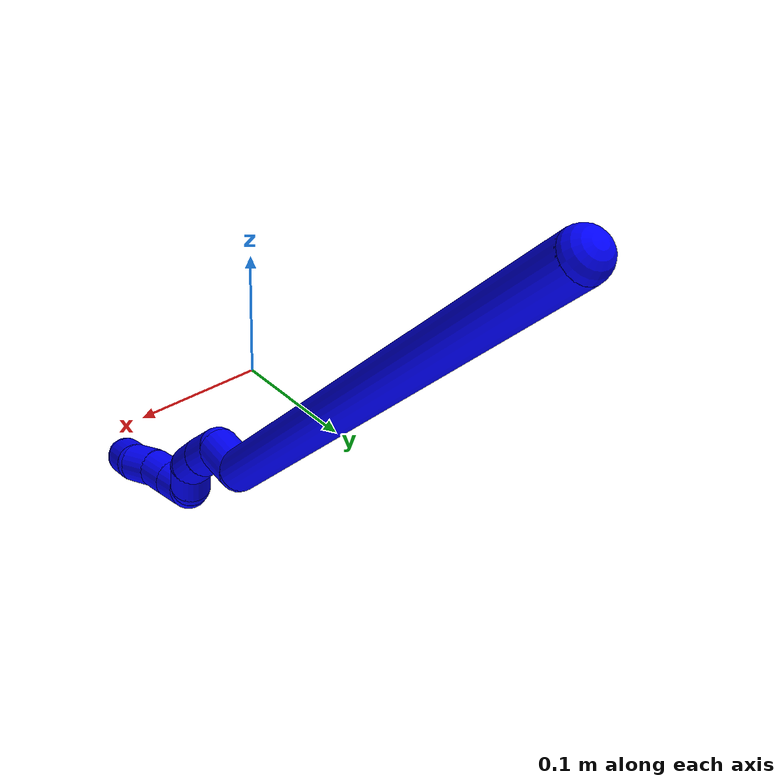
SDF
<sdf version="1.7">
 <world name="default">
  <plugin name="TubeGeneratorPlugin" filename="libtube_generator_plugin.so"/>
  <model name="photoneo_s_sensor">
   <static>1</static>
   <pose>0 0 2 1.57079 1.57079 3.14159</pose>
   <link name="link">
    <inertial><mass>0.1</mass></inertial>
    <sensor name="sensor" type="depth">
     <update_rate>30</update_rate>
     <camera>
      <horizontal_fov>1.22</horizontal_fov>
      <image><width>1920</width><height>1200</height><format>B8G8R8</format></image>
      <clip><near>0.1</near><far>4</far></clip>
      <depth_camera><output>points</output></depth_camera>
     </camera>
     <plugin name="camera_plugin" filename="libgazebo_ros_depth_camera.so">
      <baseline>0.2</baseline>
      <alwaysOn>1</alwaysOn>
      <updateRate>0.0</updateRate>
      <cameraName>camera_ir</cameraName>
      <imageTopicName>/camera/color/image_raw</imageTopicName>
      <cameraInfoTopicName>/camera/color/camera_info</cameraInfoTopicName>
      <depthImageTopicName>/camera/depth/image_raw</depthImageTopicName>
      <depthImageCameraInfoTopicName>/camera/depth/camera_info</depthImageCameraInfoTopicName>
      <pointCloudTopicName>/camera/depth/points</pointCloudTopicName>
      <frameName>fr_optical</frameName>
      <pointCloudCutoff>0.1</pointCloudCutoff>
      <pointCloudCutoffMax>2.0</pointCloudCutoffMax>
      <distortionK1>0</distortionK1>
      <distortionK2>0</distortionK2>
      <distortionK3>0</distortionK3>
      <distortionT1>0</distortionT1>
      <distortionT2>0</distortionT2>
      <CxPrime>0</CxPrime>
      <Cx>0</Cx>
      <Cy>0</Cy>
      <focalLength>0</focalLength>
      <hackBaseline>0</hackBaseline>
     </plugin>
    </sensor>
   </link>
  </model>
  <gravity>0 0 -9.8</gravity>
  <magnetic_field>6e-06 2.3e-05 -4.2e-05</magnetic_field>
  <atmosphere type="adiabatic"/>
  <physics name="default_physics" default="0" type="ode">
   <max_step_size>0.003</max_step_size>
   <real_time_factor>1</real_time_factor>
   <real_time_update_rate>1000</real_time_update_rate>
   <max_contacts>10000</max_contacts>
   <ode>
    <solver>
     <type>quick</type>
     <iters>100</iters>
     <sor>1.3</sor>
     <use_dynamic_moi_rescaling>0</use_dynamic_moi_rescaling>
    </solver>
    <constraints>
     <contact_max_correcting_vel>0</contact_max_correcting_vel>
     <contact_surface_layer>0.001</contact_surface_layer>
     <cfm>0</cfm>
     <erp>0.2</erp>
    </constraints>
   </ode>
  </physics>
  <scene><ambient>0.4 0.4 0.4 1</ambient><background>0.7 0.7 0.7 1</background><shadows>0</shadows></scene>
  <audio><device>default</device></audio>
  <spherical_coordinates>
   <surface_model>EARTH_WGS84</surface_model>
   <latitude_deg>0</latitude_deg>
   <longitude_deg>0</longitude_deg>
   <elevation>0</elevation>
   <heading_deg>0</heading_deg>
  </spherical_coordinates>
  <model name="bin">
   <static>1</static>
   <link name="bottom">
    <collision name="collision-bottom">
     <pose>0 0 -0.01 0 -0 0</pose>
     <geometry><box><size>0.8 0.6 0.02</size></box></geometry>
     <surface>
      <friction><ode><mu>100</mu><mu2>100</mu2></ode></friction>
      <contact><collide_bitmask>65535</collide_bitmask></contact>
     </surface>
    </collision>
   </link>
   <link name="west_wall">
    <collision name="collision-west_wall">
     <pose>-0.41 0 0.1 0 -0 0</pose>
     <geometry><box><size>0.02 0.6 0.2</size></box></geometry>
     <surface>
      <friction><ode><mu>100</mu><mu2>100</mu2></ode></friction>
      <contact><collide_bitmask>65535</collide_bitmask></contact>
     </surface>
    </collision>
   </link>
   <link name="east_wall">
    <collision name="collision-east_wall">
     <pose>0.41 0 0.1 0 -0 0</pose>
     <geometry><box><size>0.02 0.6 0.2</size></box></geometry>
     <surface>
      <friction><ode><mu>100</mu><mu2>100</mu2></ode></friction>
      <contact><collide_bitmask>65535</collide_bitmask></contact>
     </surface>
    </collision>
   </link>
   <link name="south_wall">
    <collision name="collision-south_wall">
     <pose>0 -0.31 0.1 0 -0 0</pose>
     <geometry><box><size>0.8 0.02 0.2</size></box></geometry>
     <surface>
      <friction><ode><mu>100</mu><mu2>100</mu2></ode></friction>
      <contact><collide_bitmask>65535</collide_bitmask></contact>
     </surface>
    </collision>
   </link>
   <link name="north_wall">
    <collision name="collision-north_wall">
     <pose>0 0.31 0.1 0 -0 0</pose>
     <geometry><box><size>0.8 0.02 0.2</size></box></geometry>
     <surface>
      <friction><ode><mu>100</mu><mu2>100</mu2></ode></friction>
      <contact><collide_bitmask>65535</collide_bitmask></contact>
     </surface>
    </collision>
   </link>
  </model>
  <model name="1">
   <static>0</static>
   <link name="1">
    <collision name="collision-cylinder-e_1_1_4">
     <pose>0.007059 -0.011814 -0.154752 3.0654 0.045449 1.07542</pose>
     <geometry><cylinder><radius>0.0125</radius><length>0.310725</length></cylinder></geometry>
     <surface>
      <friction><ode><mu>1.16</mu><mu2>1.16</mu2><slip1>0</slip1><slip2>0</slip2></ode></friction>
      <contact><ode><kp>1e+06</kp><kd>1</kd><max_vel>0</max_vel><min_depth>0.001</min_depth></ode></contact>
     </surface>
    </collision>
    <visual name="visual-cylinder-e_1_1_4">
     <pose>0.007059 -0.011814 -0.154752 3.0654 0.045449 1.07542</pose>
     <geometry><cylinder><radius>0.0125</radius><length>0.310725</length></cylinder></geometry>
     <material><ambient>0 0 1 1</ambient></material>
    </visual>
    <collision name="collision-cylinder-e_2_4_5">
     <pose>0.011742 -0.03346 -0.319087 2.34336 -0.171273 -0.401608</pose>
     <geometry><cylinder><radius>0.0125</radius><length>0.027868</length></cylinder></geometry>
     <surface>
      <friction><ode><mu>1.16</mu><mu2>1.16</mu2><slip1>0</slip1><slip2>0</slip2></ode></friction>
      <contact><ode><kp>1e+06</kp><kd>1</kd><max_vel>0</max_vel><min_depth>0.001</min_depth></ode></contact>
     </surface>
    </collision>
    <visual name="visual-cylinder-e_2_4_5">
     <pose>0.011742 -0.03346 -0.319087 2.34336 -0.171273 -0.401608</pose>
     <geometry><cylinder><radius>0.0125</radius><length>0.027868</length></cylinder></geometry>
     <material><ambient>0 0 1 1</ambient></material>
    </visual>
    <collision name="collision-cylinder-e_3_5_6">
     <pose>0.010068 -0.044544 -0.339262 3.02399 0.065597 1.01689</pose>
     <geometry><cylinder><radius>0.0125</radius><length>0.021376</length></cylinder></geometry>
     <surface>
      <friction><ode><mu>1.16</mu><mu2>1.16</mu2><slip1>0</slip1><slip2>0</slip2></ode></friction>
      <contact><ode><kp>1e+06</kp><kd>1</kd><max_vel>0</max_vel><min_depth>0.001</min_depth></ode></contact>
     </surface>
    </collision>
    <visual name="visual-cylinder-e_3_5_6">
     <pose>0.010068 -0.044544 -0.339262 3.02399 0.065597 1.01689</pose>
     <geometry><cylinder><radius>0.0125</radius><length>0.021376</length></cylinder></geometry>
     <material><ambient>0 0 1 1</ambient></material>
    </visual>
    <collision name="collision-cylinder-e_4_6_7">
     <pose>0.011484 -0.046391 -0.359824 3.08191 0.071475 1.75032</pose>
     <geometry><cylinder><radius>0.0125</radius><length>0.02003</length></cylinder></geometry>
     <surface>
      <friction><ode><mu>1.16</mu><mu2>1.16</mu2><slip1>0</slip1><slip2>0</slip2></ode></friction>
      <contact><ode><kp>1e+06</kp><kd>1</kd><max_vel>0</max_vel><min_depth>0.001</min_depth></ode></contact>
     </surface>
    </collision>
    <visual name="visual-cylinder-e_4_6_7">
     <pose>0.011484 -0.046391 -0.359824 3.08191 0.071475 1.75032</pose>
     <geometry><cylinder><radius>0.0125</radius><length>0.02003</length></cylinder></geometry>
     <material><ambient>0 0 1 1</ambient></material>
    </visual>
    <collision name="collision-cylinder-e_5_7_8">
     <pose>0.011371 -0.042516 -0.378703 -2.67637 -0.082935 0.346768</pose>
     <geometry><cylinder><radius>0.0125</radius><length>0.020001</length></cylinder></geometry>
     <surface>
      <friction><ode><mu>1.16</mu><mu2>1.16</mu2><slip1>0</slip1><slip2>0</slip2></ode></friction>
      <contact><ode><kp>1e+06</kp><kd>1</kd><max_vel>0</max_vel><min_depth>0.001</min_depth></ode></contact>
     </surface>
    </collision>
    <visual name="visual-cylinder-e_5_7_8">
     <pose>0.011371 -0.042516 -0.378703 -2.67637 -0.082935 0.346768</pose>
     <geometry><cylinder><radius>0.0125</radius><length>0.020001</length></cylinder></geometry>
     <material><ambient>0 0 1 1</ambient></material>
    </visual>
    <collision name="collision-cylinder-e_6_8_9">
     <pose>0.00742 -0.038645 -0.397091 3.07841 -0.317575 -2.75193</pose>
     <geometry><cylinder><radius>0.0125</radius><length>0.020001</length></cylinder></geometry>
     <surface>
      <friction><ode><mu>1.16</mu><mu2>1.16</mu2><slip1>0</slip1><slip2>0</slip2></ode></friction>
      <contact><ode><kp>1e+06</kp><kd>1</kd><max_vel>0</max_vel><min_depth>0.001</min_depth></ode></contact>
     </surface>
    </collision>
    <visual name="visual-cylinder-e_6_8_9">
     <pose>0.00742 -0.038645 -0.397091 3.07841 -0.317575 -2.75193</pose>
     <geometry><cylinder><radius>0.0125</radius><length>0.020001</length></cylinder></geometry>
     <material><ambient>0 0 1 1</ambient></material>
    </visual>
    <collision name="collision-cylinder-e_7_9_10">
     <pose>0.004379 -0.045759 -0.414158 2.43206 0.008219 0.022186</pose>
     <geometry><cylinder><radius>0.0125</radius><length>0.02</length></cylinder></geometry>
     <surface>
      <friction><ode><mu>1.16</mu><mu2>1.16</mu2><slip1>0</slip1><slip2>0</slip2></ode></friction>
      <contact><ode><kp>1e+06</kp><kd>1</kd><max_vel>0</max_vel><min_depth>0.001</min_depth></ode></contact>
     </surface>
    </collision>
    <visual name="visual-cylinder-e_7_9_10">
     <pose>0.004379 -0.045759 -0.414158 2.43206 0.008219 0.022186</pose>
     <geometry><cylinder><radius>0.0125</radius><length>0.02</length></cylinder></geometry>
     <material><ambient>0 0 1 1</ambient></material>
    </visual>
    <collision name="collision-cylinder-e_8_10_11">
     <pose>0.004665 -0.059038 -0.429107 2.39848 0.020369 0.052266</pose>
     <geometry><cylinder><radius>0.0125</radius><length>0.02</length></cylinder></geometry>
     <surface>
      <friction><ode><mu>1.16</mu><mu2>1.16</mu2><slip1>0</slip1><slip2>0</slip2></ode></friction>
      <contact><ode><kp>1e+06</kp><kd>1</kd><max_vel>0</max_vel><min_depth>0.001</min_depth></ode></contact>
     </surface>
    </collision>
    <visual name="visual-cylinder-e_8_10_11">
     <pose>0.004665 -0.059038 -0.429107 2.39848 0.020369 0.052266</pose>
     <geometry><cylinder><radius>0.0125</radius><length>0.02</length></cylinder></geometry>
     <material><ambient>0 0 1 1</ambient></material>
    </visual>
    <collision name="collision-cylinder-e_9_11_12">
     <pose>0.00723 -0.071672 -0.444214 2.49307 0.238336 0.68441</pose>
     <geometry><cylinder><radius>0.0125</radius><length>0.02</length></cylinder></geometry>
     <surface>
      <friction><ode><mu>1.16</mu><mu2>1.16</mu2><slip1>0</slip1><slip2>0</slip2></ode></friction>
      <contact><ode><kp>1e+06</kp><kd>1</kd><max_vel>0</max_vel><min_depth>0.001</min_depth></ode></contact>
     </surface>
    </collision>
    <visual name="visual-cylinder-e_9_11_12">
     <pose>0.00723 -0.071672 -0.444214 2.49307 0.238336 0.68441</pose>
     <geometry><cylinder><radius>0.0125</radius><length>0.02</length></cylinder></geometry>
     <material><ambient>0 0 1 1</ambient></material>
    </visual>
    <collision name="collision-cylinder-e_10_12_2">
     <pose>0.00779 -0.082352 -0.460538 2.6306 -0.181075 -0.669001</pose>
     <geometry><cylinder><radius>0.0125</radius><length>0.02</length></cylinder></geometry>
     <surface>
      <friction><ode><mu>1.16</mu><mu2>1.16</mu2><slip1>0</slip1><slip2>0</slip2></ode></friction>
      <contact><ode><kp>1e+06</kp><kd>1</kd><max_vel>0</max_vel><min_depth>0.001</min_depth></ode></contact>
     </surface>
    </collision>
    <visual name="visual-cylinder-e_10_12_2">
     <pose>0.00779 -0.082352 -0.460538 2.6306 -0.181075 -0.669001</pose>
     <geometry><cylinder><radius>0.0125</radius><length>0.02</length></cylinder></geometry>
     <material><ambient>0 0 1 1</ambient></material>
    </visual>
    <collision name="collision-sphere-2">
     <pose>0.005989 -0.087162 -0.469118 0 -0 0</pose>
     <geometry><sphere><radius>0.0125</radius></sphere></geometry>
     <surface>
      <friction><ode><mu>1.16</mu><mu2>1.16</mu2><slip1>0</slip1><slip2>0</slip2></ode></friction>
      <contact><ode><kp>1e+06</kp><kd>1</kd><max_vel>0</max_vel><min_depth>0.001</min_depth></ode></contact>
     </surface>
    </collision>
    <visual name="visual-sphere-2">
     <pose>0.005989 -0.087162 -0.469118 0 -0 0</pose>
     <geometry><sphere><radius>0.0125</radius></sphere></geometry>
     <material><ambient>0 0 1 1</ambient></material>
    </visual>
    <collision name="collision-sphere-12">
     <pose>0.00959 -0.077541 -0.451958 0 -0 0</pose>
     <geometry><sphere><radius>0.0125</radius></sphere></geometry>
     <surface>
      <friction><ode><mu>1.16</mu><mu2>1.16</mu2><slip1>0</slip1><slip2>0</slip2></ode></friction>
      <contact><ode><kp>1e+06</kp><kd>1</kd><max_vel>0</max_vel><min_depth>0.001</min_depth></ode></contact>
     </surface>
    </collision>
    <visual name="visual-sphere-12">
     <pose>0.00959 -0.077541 -0.451958 0 -0 0</pose>
     <geometry><sphere><radius>0.0125</radius></sphere></geometry>
     <material><ambient>0 0 1 1</ambient></material>
    </visual>
    <collision name="collision-sphere-11">
     <pose>0.004869 -0.065803 -0.436469 0 -0 0</pose>
     <geometry><sphere><radius>0.0125</radius></sphere></geometry>
     <surface>
      <friction><ode><mu>1.16</mu><mu2>1.16</mu2><slip1>0</slip1><slip2>0</slip2></ode></friction>
      <contact><ode><kp>1e+06</kp><kd>1</kd><max_vel>0</max_vel><min_depth>0.001</min_depth></ode></contact>
     </surface>
    </collision>
    <visual name="visual-sphere-11">
     <pose>0.004869 -0.065803 -0.436469 0 -0 0</pose>
     <geometry><sphere><radius>0.0125</radius></sphere></geometry>
     <material><ambient>0 0 1 1</ambient></material>
    </visual>
    <collision name="collision-sphere-10">
     <pose>0.004461 -0.052274 -0.421745 0 -0 0</pose>
     <geometry><sphere><radius>0.0125</radius></sphere></geometry>
     <surface>
      <friction><ode><mu>1.16</mu><mu2>1.16</mu2><slip1>0</slip1><slip2>0</slip2></ode></friction>
      <contact><ode><kp>1e+06</kp><kd>1</kd><max_vel>0</max_vel><min_depth>0.001</min_depth></ode></contact>
     </surface>
    </collision>
    <visual name="visual-sphere-10">
     <pose>0.004461 -0.052274 -0.421745 0 -0 0</pose>
     <geometry><sphere><radius>0.0125</radius></sphere></geometry>
     <material><ambient>0 0 1 1</ambient></material>
    </visual>
    <collision name="collision-sphere-9">
     <pose>0.004297 -0.039244 -0.406572 0 -0 0</pose>
     <geometry><sphere><radius>0.0125</radius></sphere></geometry>
     <surface>
      <friction><ode><mu>1.16</mu><mu2>1.16</mu2><slip1>0</slip1><slip2>0</slip2></ode></friction>
      <contact><ode><kp>1e+06</kp><kd>1</kd><max_vel>0</max_vel><min_depth>0.001</min_depth></ode></contact>
     </surface>
    </collision>
    <visual name="visual-sphere-9">
     <pose>0.004297 -0.039244 -0.406572 0 -0 0</pose>
     <geometry><sphere><radius>0.0125</radius></sphere></geometry>
     <material><ambient>0 0 1 1</ambient></material>
    </visual>
    <collision name="collision-sphere-4">
     <pose>0.014117 -0.023627 -0.309504 0 -0 0</pose>
     <geometry><sphere><radius>0.0125</radius></sphere></geometry>
     <surface>
      <friction><ode><mu>1.16</mu><mu2>1.16</mu2><slip1>0</slip1><slip2>0</slip2></ode></friction>
      <contact><ode><kp>1e+06</kp><kd>1</kd><max_vel>0</max_vel><min_depth>0.001</min_depth></ode></contact>
     </surface>
    </collision>
    <visual name="visual-sphere-4">
     <pose>0.014117 -0.023627 -0.309504 0 -0 0</pose>
     <geometry><sphere><radius>0.0125</radius></sphere></geometry>
     <material><ambient>0 0 1 1</ambient></material>
    </visual>
    <collision name="collision-sphere-1">
     <geometry><sphere><radius>0.0125</radius></sphere></geometry>
     <surface>
      <friction><ode><mu>1.16</mu><mu2>1.16</mu2><slip1>0</slip1><slip2>0</slip2></ode></friction>
      <contact><ode><kp>1e+06</kp><kd>1</kd><max_vel>0</max_vel><min_depth>0.001</min_depth></ode></contact>
     </surface>
    </collision>
    <visual name="visual-sphere-1">
     <geometry><sphere><radius>0.0125</radius></sphere></geometry>
     <material><ambient>0 0 1 1</ambient></material>
    </visual>
    <collision name="collision-sphere-8">
     <pose>0.010542 -0.038045 -0.387609 0 -0 0</pose>
     <geometry><sphere><radius>0.0125</radius></sphere></geometry>
     <surface>
      <friction><ode><mu>1.16</mu><mu2>1.16</mu2><slip1>0</slip1><slip2>0</slip2></ode></friction>
      <contact><ode><kp>1e+06</kp><kd>1</kd><max_vel>0</max_vel><min_depth>0.001</min_depth></ode></contact>
     </surface>
    </collision>
    <visual name="visual-sphere-8">
     <pose>0.010542 -0.038045 -0.387609 0 -0 0</pose>
     <geometry><sphere><radius>0.0125</radius></sphere></geometry>
     <material><ambient>0 0 1 1</ambient></material>
    </visual>
    <collision name="collision-sphere-5">
     <pose>0.009368 -0.043292 -0.32867 0 -0 0</pose>
     <geometry><sphere><radius>0.0125</radius></sphere></geometry>
     <surface>
      <friction><ode><mu>1.16</mu><mu2>1.16</mu2><slip1>0</slip1><slip2>0</slip2></ode></friction>
      <contact><ode><kp>1e+06</kp><kd>1</kd><max_vel>0</max_vel><min_depth>0.001</min_depth></ode></contact>
     </surface>
    </collision>
    <visual name="visual-sphere-5">
     <pose>0.009368 -0.043292 -0.32867 0 -0 0</pose>
     <geometry><sphere><radius>0.0125</radius></sphere></geometry>
     <material><ambient>0 0 1 1</ambient></material>
    </visual>
    <collision name="collision-sphere-6">
     <pose>0.010769 -0.045795 -0.349853 0 -0 0</pose>
     <geometry><sphere><radius>0.0125</radius></sphere></geometry>
     <surface>
      <friction><ode><mu>1.16</mu><mu2>1.16</mu2><slip1>0</slip1><slip2>0</slip2></ode></friction>
      <contact><ode><kp>1e+06</kp><kd>1</kd><max_vel>0</max_vel><min_depth>0.001</min_depth></ode></contact>
     </surface>
    </collision>
    <visual name="visual-sphere-6">
     <pose>0.010769 -0.045795 -0.349853 0 -0 0</pose>
     <geometry><sphere><radius>0.0125</radius></sphere></geometry>
     <material><ambient>0 0 1 1</ambient></material>
    </visual>
    <collision name="collision-sphere-7">
     <pose>0.012199 -0.046987 -0.369796 0 -0 0</pose>
     <geometry><sphere><radius>0.0125</radius></sphere></geometry>
     <surface>
      <friction><ode><mu>1.16</mu><mu2>1.16</mu2><slip1>0</slip1><slip2>0</slip2></ode></friction>
      <contact><ode><kp>1e+06</kp><kd>1</kd><max_vel>0</max_vel><min_depth>0.001</min_depth></ode></contact>
     </surface>
    </collision>
    <visual name="visual-sphere-7">
     <pose>0.012199 -0.046987 -0.369796 0 -0 0</pose>
     <geometry><sphere><radius>0.0125</radius></sphere></geometry>
     <material><ambient>0 0 1 1</ambient></material>
    </visual>
    <inertial>
     <pose>0.007646 -0.026569 -0.243827 0 -0 0</pose>
     <mass>0.5</mass>
     <inertia>
      <ixx>0.003412</ixx>
      <ixy>0</ixy>
      <ixz>0</ixz>
      <iyy>0.001014</iyy>
      <iyz>0</iyz>
      <izz>4.6e-05</izz>
     </inertia>
    </inertial>
   </link>
   <pose>0.140761 0.400999 0.32792 -0.662682 0.007785 -0.010888</pose>
  </model>
 </world>
</sdf>
